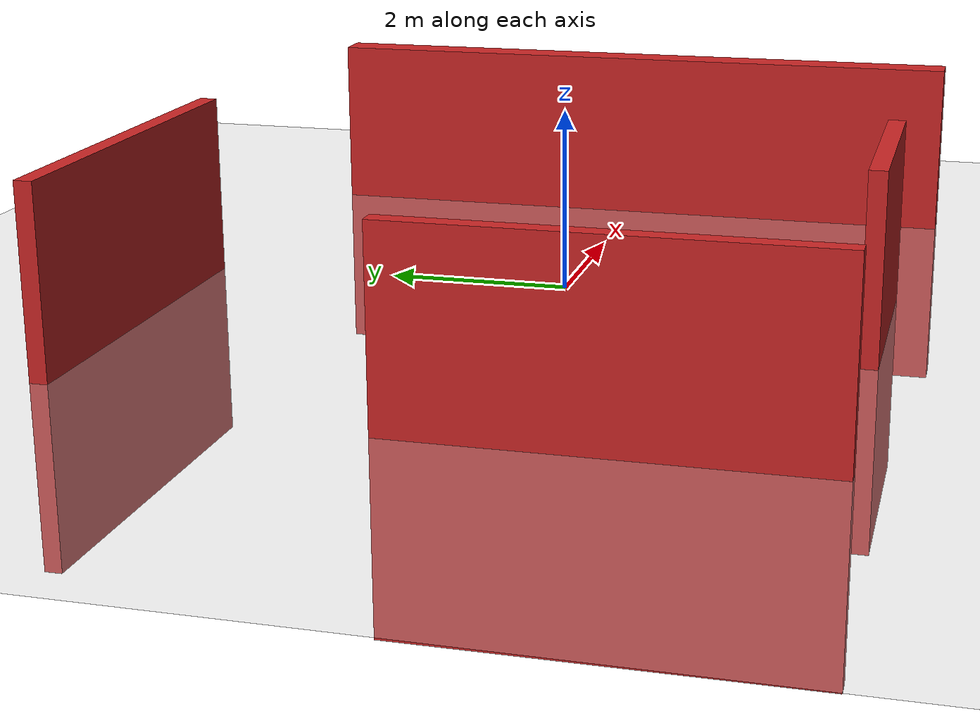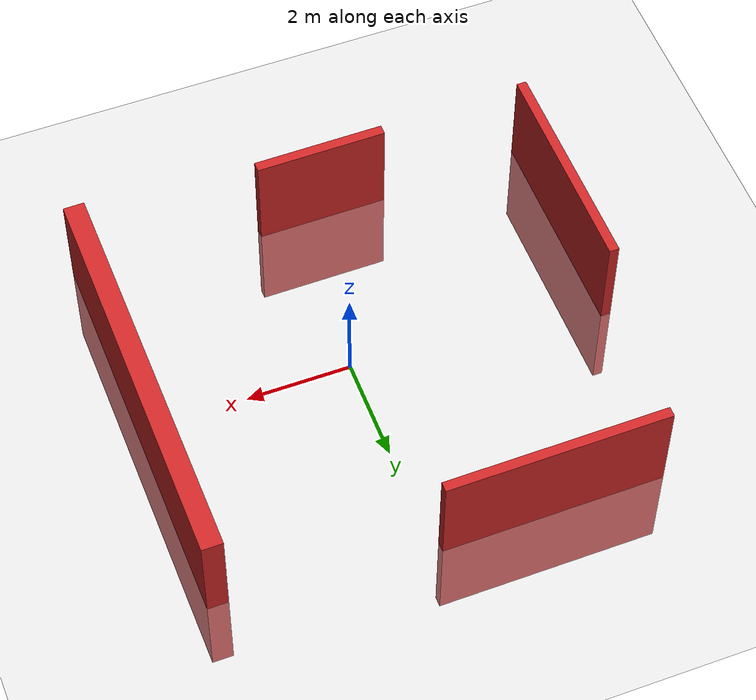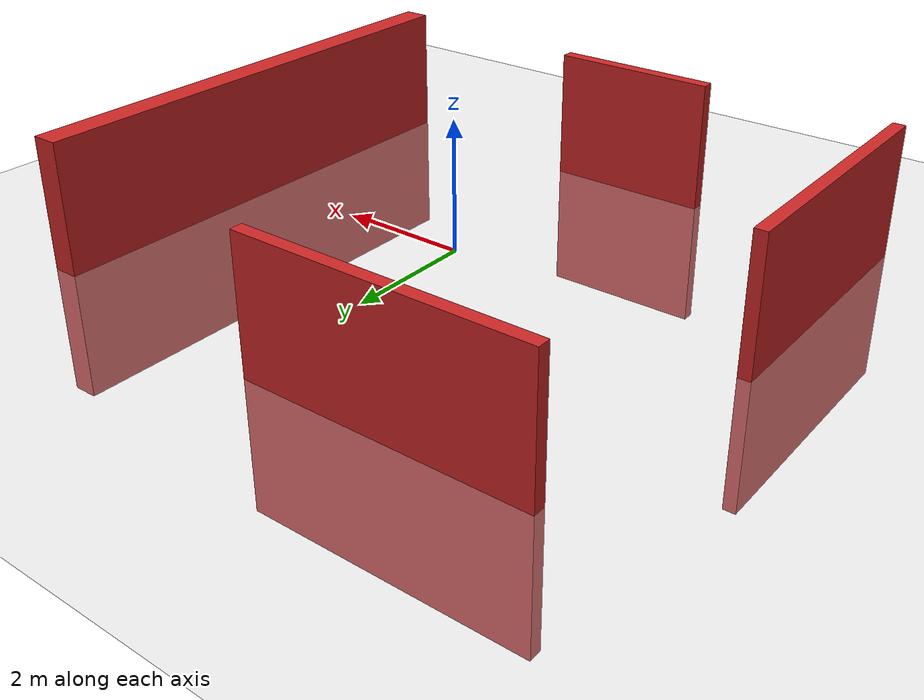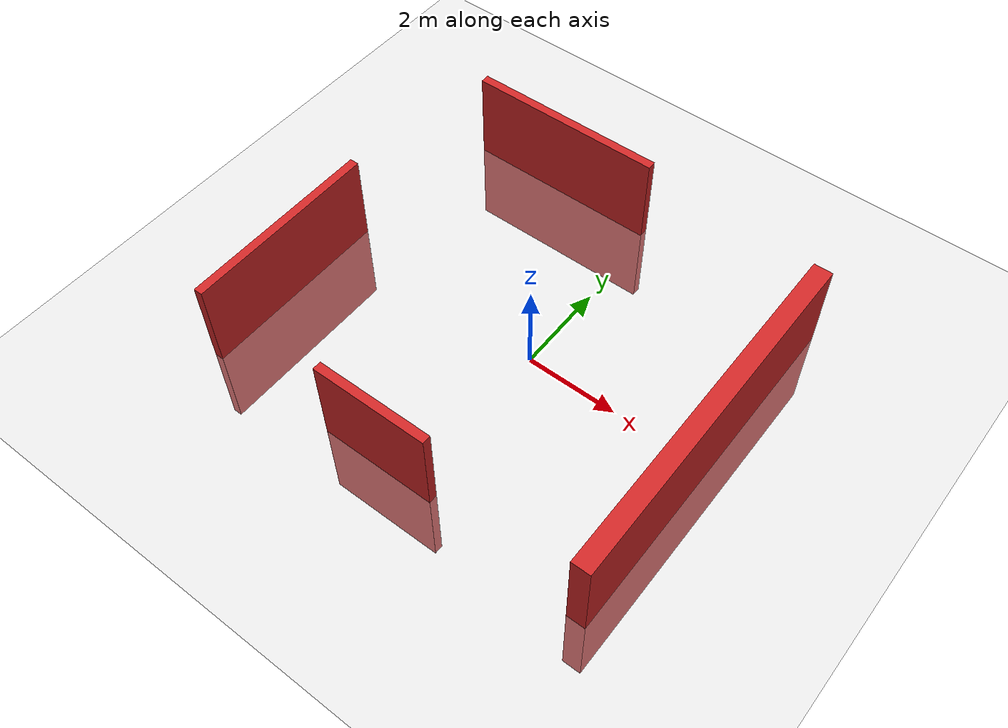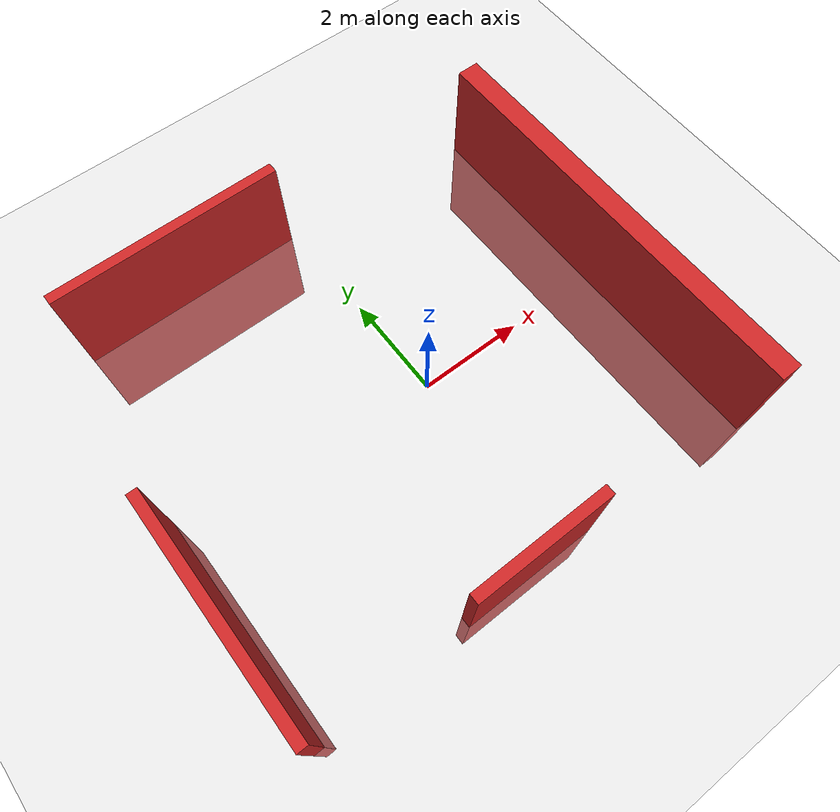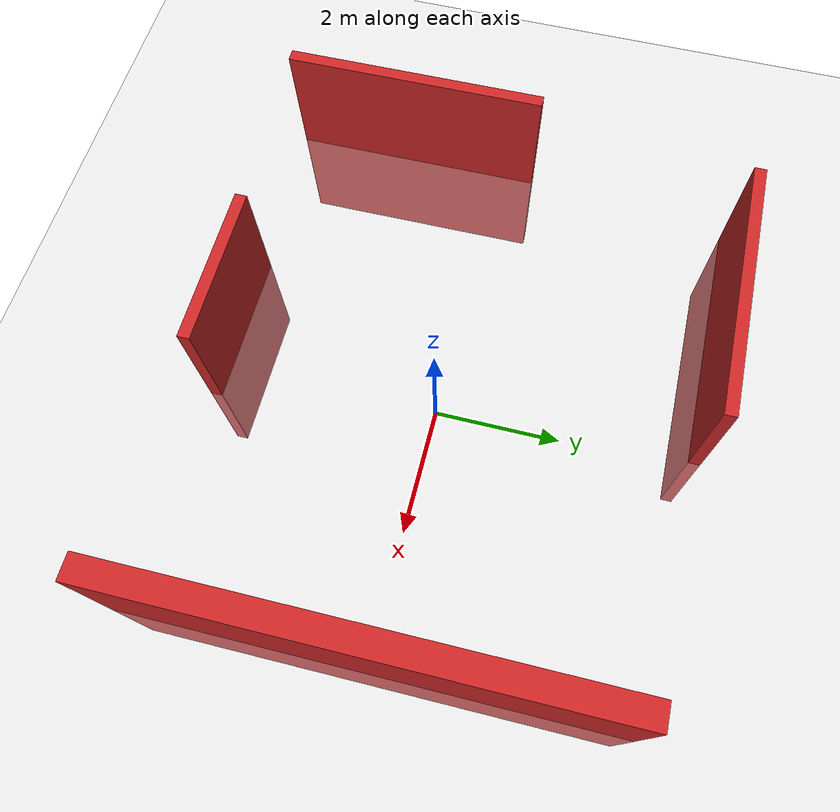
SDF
<sdf version="1.6">
 <world name="default">
  <light name="sun" type="directional">
   <pose>0 0 10 0 -0 0</pose>
   <diffuse>0.8 0.8 0.8 1</diffuse>
   <specular>0.2 0.2 0.2 1</specular>
   <attenuation>
    <range>1000</range>
    <constant>0.9</constant>
    <linear>0.01</linear>
    <quadratic>0.001</quadratic>
   </attenuation>
   <direction>-0.5 0.1 -0.9</direction>
  </light>
  <model name="ground_plane">
   <static>1</static>
   <link name="link">
    <collision name="collision">
     <geometry><plane><normal>0 0 1</normal><size>100 100</size></plane></geometry>
     <surface><friction><ode><mu>100</mu><mu2>50</mu2></ode></friction></surface>
    </collision>
    <visual name="visual">
     <cast_shadows>0</cast_shadows>
     <geometry><plane><normal>0 0 1</normal><size>100 100</size></plane></geometry>
     <material>
      <script><uri>file://media/materials/scripts/gazebo.material</uri><name>Gazebo/Grey</name></script>
     </material>
    </visual>
   </link>
  </model>
  <gravity>0 0 -9.8</gravity>
  <magnetic_field>6e-06 2.3e-05 -4.2e-05</magnetic_field>
  <atmosphere type="adiabatic"/>
  <physics name="default_physics" default="0" type="ode">
   <max_step_size>0.001</max_step_size>
   <real_time_factor>1</real_time_factor>
   <real_time_update_rate>1000</real_time_update_rate>
  </physics>
  <scene><ambient>0.4 0.4 0.4 1</ambient><background>0.7 0.7 0.7 1</background><shadows>1</shadows></scene>
  <spherical_coordinates>
   <surface_model>EARTH_WGS84</surface_model>
   <latitude_deg>0</latitude_deg>
   <longitude_deg>0</longitude_deg>
   <elevation>0</elevation>
   <heading_deg>0</heading_deg>
  </spherical_coordinates>
  <model name="unit_box_new_red">
   <link name="link">
    <inertial>
     <mass>3.93982e+06</mass>
     <inertia>
      <ixx>5.42451e+06</ixx>
      <ixy>0</ixy>
      <ixz>0</ixz>
      <iyy>5.42451e+06</iyy>
      <iyz>0</iyz>
      <izz>656636</izz>
     </inertia>
    </inertial>
    <visual name="visual">
     <geometry><box><size>7.67543 0.397952 3.93981</size></box></geometry>
     <material>
      <script><name>Gazebo/Red</name><uri>file://media/materials/scripts/gazebo.material</uri></script>
      <shader type="pixel"><normal_map>__default__</normal_map></shader>
      <ambient>0.5 0.3 0.3 1</ambient>
      <diffuse>0.9 0.7 0.7 1</diffuse>
      <specular>0.03 0.01 0.01 1</specular>
      <emissive>0 0 0 1</emissive>
     </material>
    </visual>
    <collision name="collision">
     <geometry><box><size>7.67543 0.397952 3.93981</size></box></geometry>
     <surface>
      <friction>
       <ode><mu>1</mu><mu2>1</mu2><fdir1>0 0 0</fdir1><slip1>0</slip1><slip2>0</slip2></ode>
       <torsional>
        <coefficient>1</coefficient>
        <patch_radius>0</patch_radius>
        <surface_radius>0</surface_radius>
        <use_patch_radius>1</use_patch_radius>
        <ode><slip>0</slip></ode>
       </torsional>
      </friction>
      <bounce><restitution_coefficient>0</restitution_coefficient><threshold>1e+06</threshold></bounce>
      <contact>
       <collide_without_contact>0</collide_without_contact>
       <collide_without_contact_bitmask>1</collide_without_contact_bitmask>
       <collide_bitmask>1</collide_bitmask>
       <ode>
        <soft_cfm>0</soft_cfm>
        <soft_erp>0.2</soft_erp>
        <kp>1e+13</kp>
        <kd>1</kd>
        <max_vel>0.01</max_vel>
        <min_depth>0</min_depth>
       </ode>
       <bullet>
        <split_impulse>1</split_impulse>
        <split_impulse_penetration_threshold>-0.01</split_impulse_penetration_threshold>
        <soft_cfm>0</soft_cfm>
        <soft_erp>0.2</soft_erp>
        <kp>1e+13</kp>
        <kd>1</kd>
       </bullet>
      </contact>
     </surface>
    </collision>
   </link>
   <static>1</static>
   <pose>3.8921 -0.002986 0 0 0 -1.56507</pose>
  </model>
  <model name="unit_box_new_red_clone">
   <link name="link">
    <inertial>
     <mass>3.93982e+06</mass>
     <inertia>
      <ixx>5.42451e+06</ixx>
      <ixy>0</ixy>
      <ixz>0</ixz>
      <iyy>5.42451e+06</iyy>
      <iyz>0</iyz>
      <izz>656636</izz>
     </inertia>
    </inertial>
    <visual name="visual">
     <geometry><box><size>4.22931 0.188483 3.93981</size></box></geometry>
     <material>
      <script><name>Gazebo/Red</name><uri>file://media/materials/scripts/gazebo.material</uri></script>
      <shader type="pixel"><normal_map>__default__</normal_map></shader>
      <ambient>0.5 0.3 0.3 1</ambient>
      <diffuse>0.9 0.7 0.7 1</diffuse>
      <specular>0.03 0.01 0.01 1</specular>
      <emissive>0 0 0 1</emissive>
     </material>
    </visual>
    <collision name="collision">
     <geometry><box><size>4.22931 0.188483 3.93981</size></box></geometry>
     <surface>
      <friction>
       <ode><mu>1</mu><mu2>1</mu2><fdir1>0 0 0</fdir1><slip1>0</slip1><slip2>0</slip2></ode>
       <torsional>
        <coefficient>1</coefficient>
        <patch_radius>0</patch_radius>
        <surface_radius>0</surface_radius>
        <use_patch_radius>1</use_patch_radius>
        <ode><slip>0</slip></ode>
       </torsional>
      </friction>
      <bounce><restitution_coefficient>0</restitution_coefficient><threshold>1e+06</threshold></bounce>
      <contact>
       <collide_without_contact>0</collide_without_contact>
       <collide_without_contact_bitmask>1</collide_without_contact_bitmask>
       <collide_bitmask>1</collide_bitmask>
       <ode>
        <soft_cfm>0</soft_cfm>
        <soft_erp>0.2</soft_erp>
        <kp>1e+13</kp>
        <kd>1</kd>
        <max_vel>0.01</max_vel>
        <min_depth>0</min_depth>
       </ode>
       <bullet>
        <split_impulse>1</split_impulse>
        <split_impulse_penetration_threshold>-0.01</split_impulse_penetration_threshold>
        <soft_cfm>0</soft_cfm>
        <soft_erp>0.2</soft_erp>
        <kp>1e+13</kp>
        <kd>1</kd>
       </bullet>
      </contact>
     </surface>
    </collision>
   </link>
   <static>1</static>
   <pose>-4.84828 -1.54607 0 0 0 -1.56507</pose>
  </model>
  <model name="unit_box_new_red_clone_clone">
   <link name="link">
    <inertial>
     <mass>3.93982e+06</mass>
     <inertia>
      <ixx>5.42451e+06</ixx>
      <ixy>0</ixy>
      <ixz>0</ixz>
      <iyy>5.42451e+06</iyy>
      <iyz>0</iyz>
      <izz>656636</izz>
     </inertia>
    </inertial>
    <visual name="visual">
     <geometry><box><size>4.22931 0.188483 3.93981</size></box></geometry>
     <material>
      <script><name>Gazebo/Red</name><uri>file://media/materials/scripts/gazebo.material</uri></script>
      <shader type="pixel"><normal_map>__default__</normal_map></shader>
      <ambient>0.5 0.3 0.3 1</ambient>
      <diffuse>0.9 0.7 0.7 1</diffuse>
      <specular>0.03 0.01 0.01 1</specular>
      <emissive>0 0 0 1</emissive>
     </material>
    </visual>
    <collision name="collision">
     <geometry><box><size>4.22931 0.188483 3.93981</size></box></geometry>
     <surface>
      <friction>
       <ode><mu>1</mu><mu2>1</mu2><fdir1>0 0 0</fdir1><slip1>0</slip1><slip2>0</slip2></ode>
       <torsional>
        <coefficient>1</coefficient>
        <patch_radius>0</patch_radius>
        <surface_radius>0</surface_radius>
        <use_patch_radius>1</use_patch_radius>
        <ode><slip>0</slip></ode>
       </torsional>
      </friction>
      <bounce><restitution_coefficient>0</restitution_coefficient><threshold>1e+06</threshold></bounce>
      <contact>
       <collide_without_contact>0</collide_without_contact>
       <collide_without_contact_bitmask>1</collide_without_contact_bitmask>
       <collide_bitmask>1</collide_bitmask>
       <ode>
        <soft_cfm>0</soft_cfm>
        <soft_erp>0.2</soft_erp>
        <kp>1e+13</kp>
        <kd>1</kd>
        <max_vel>0.01</max_vel>
        <min_depth>0</min_depth>
       </ode>
       <bullet>
        <split_impulse>1</split_impulse>
        <split_impulse_penetration_threshold>-0.01</split_impulse_penetration_threshold>
        <soft_cfm>0</soft_cfm>
        <soft_erp>0.2</soft_erp>
        <kp>1e+13</kp>
        <kd>1</kd>
       </bullet>
      </contact>
     </surface>
    </collision>
   </link>
   <static>1</static>
   <pose>-2.2526 4.10147 0 0 0 -3.13669</pose>
  </model>
  <model name="unit_box_new_red_clone_clone_clone">
   <link name="link">
    <inertial>
     <mass>3.93982e+06</mass>
     <inertia>
      <ixx>5.42451e+06</ixx>
      <ixy>0</ixy>
      <ixz>0</ixz>
      <iyy>5.42451e+06</iyy>
      <iyz>0</iyz>
      <izz>656636</izz>
     </inertia>
    </inertial>
    <visual name="visual">
     <geometry><box><size>2.50126 0.188483 3.93981</size></box></geometry>
     <material>
      <script><name>Gazebo/Red</name><uri>file://media/materials/scripts/gazebo.material</uri></script>
      <shader type="pixel"><normal_map>__default__</normal_map></shader>
      <ambient>0.5 0.3 0.3 1</ambient>
      <diffuse>0.9 0.7 0.7 1</diffuse>
      <specular>0.03 0.01 0.01 1</specular>
      <emissive>0 0 0 1</emissive>
     </material>
    </visual>
    <collision name="collision">
     <geometry><box><size>2.50126 0.188483 3.93981</size></box></geometry>
     <surface>
      <friction>
       <ode><mu>1</mu><mu2>1</mu2><fdir1>0 0 0</fdir1><slip1>0</slip1><slip2>0</slip2></ode>
       <torsional>
        <coefficient>1</coefficient>
        <patch_radius>0</patch_radius>
        <surface_radius>0</surface_radius>
        <use_patch_radius>1</use_patch_radius>
        <ode><slip>0</slip></ode>
       </torsional>
      </friction>
      <bounce><restitution_coefficient>0</restitution_coefficient><threshold>1e+06</threshold></bounce>
      <contact>
       <collide_without_contact>0</collide_without_contact>
       <collide_without_contact_bitmask>1</collide_without_contact_bitmask>
       <collide_bitmask>1</collide_bitmask>
       <ode>
        <soft_cfm>0</soft_cfm>
        <soft_erp>0.2</soft_erp>
        <kp>1e+13</kp>
        <kd>1</kd>
        <max_vel>0.01</max_vel>
        <min_depth>0</min_depth>
       </ode>
       <bullet>
        <split_impulse>1</split_impulse>
        <split_impulse_penetration_threshold>-0.01</split_impulse_penetration_threshold>
        <soft_cfm>0</soft_cfm>
        <soft_erp>0.2</soft_erp>
        <kp>1e+13</kp>
        <kd>1</kd>
       </bullet>
      </contact>
     </surface>
    </collision>
   </link>
   <static>1</static>
   <pose>-0.738481 -3.52224 0 0 0 -3.13669</pose>
  </model>
 </world>
</sdf>
